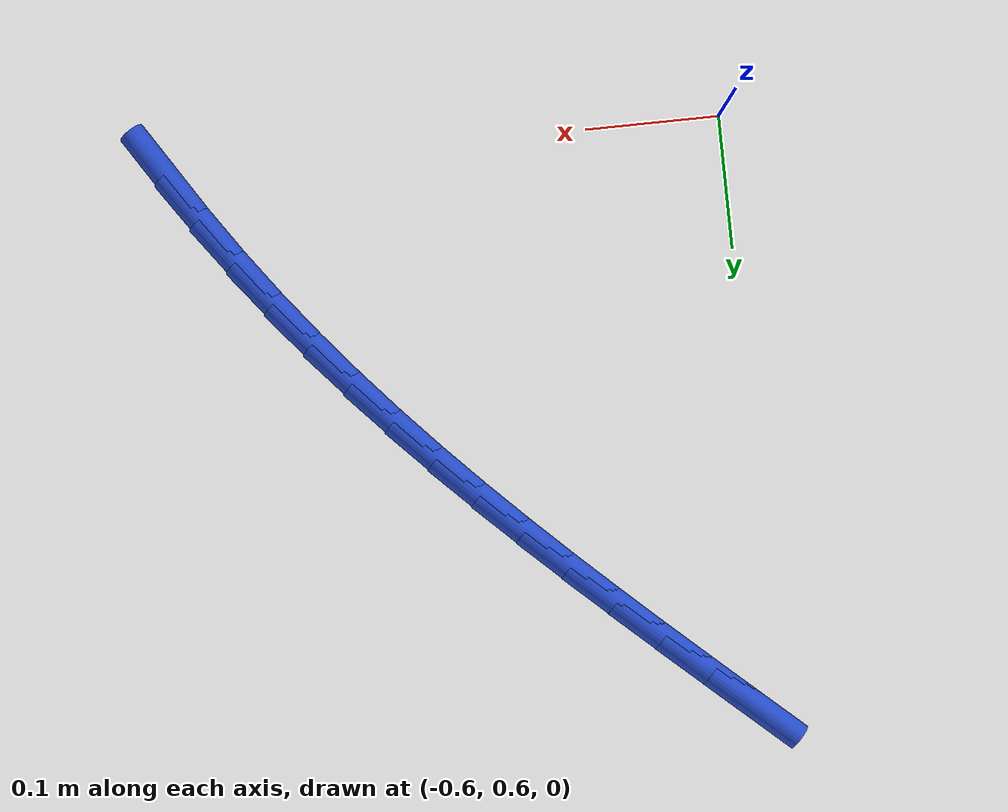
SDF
<sdf version="1.6">
 <world name="default">
  <model name="ground_plane">
   <static>1</static>
   <link name="link">
    <collision name="collision">
     <geometry><plane><normal>0 0 1</normal><size>100 100</size></plane></geometry>
     <surface><friction><ode><mu>100</mu><mu2>50</mu2></ode></friction></surface>
    </collision>
    <visual name="visual">
     <cast_shadows>0</cast_shadows>
     <geometry><plane><normal>0 0 1</normal><size>100 100</size></plane></geometry>
     <material>
      <script><uri>file://media/materials/scripts/gazebo.material</uri><name>Gazebo/WhiteGlow</name></script>
     </material>
    </visual>
   </link>
  </model>
  <model name="line">
   <link name="link_15">
    <pose>-0.18360139283458476 0.6032963163562044 0.01 0 1.57 -1.0035924352598167</pose>
    <collision name="collision">
     <geometry><cylinder><radius>0.01</radius><length>0.08</length></cylinder></geometry>
    </collision>
    <visual name="visual">
     <material>
      <script><name>Gazebo/Blue</name><uri>file://media/materials/scripts/gazebo.material</uri></script>
     </material>
     <geometry><cylinder><radius>0.01</radius><length>0.08</length></cylinder></geometry>
    </visual>
   </link>
   <link name="link_16">
    <pose>-0.206333547432564 0.6389808655287509 0.01 0 1.57 -0.9708483380710354</pose>
    <collision name="collision">
     <geometry><cylinder><radius>0.01</radius><length>0.08</length></cylinder></geometry>
    </collision>
    <visual name="visual">
     <material>
      <script><name>Gazebo/Blue</name><uri>file://media/materials/scripts/gazebo.material</uri></script>
     </material>
     <geometry><cylinder><radius>0.01</radius><length>0.08</length></cylinder></geometry>
    </visual>
   </link>
   <link name="link_17">
    <pose>-0.23010651911147798 0.6737336004096743 0.01 0 1.57 -0.9376976790625575</pose>
    <collision name="collision">
     <geometry><cylinder><radius>0.01</radius><length>0.08</length></cylinder></geometry>
    </collision>
    <visual name="visual">
     <material>
      <script><name>Gazebo/Blue</name><uri>file://media/materials/scripts/gazebo.material</uri></script>
     </material>
     <geometry><cylinder><radius>0.01</radius><length>0.08</length></cylinder></geometry>
    </visual>
   </link>
   <link name="link_18">
    <pose>-0.25487396065937173 0.7074826215023428 0.01 0 1.57 -0.9053284936645193</pose>
    <collision name="collision">
     <geometry><cylinder><radius>0.01</radius><length>0.08</length></cylinder></geometry>
    </collision>
    <visual name="visual">
     <material>
      <script><name>Gazebo/Blue</name><uri>file://media/materials/scripts/gazebo.material</uri></script>
     </material>
     <geometry><cylinder><radius>0.01</radius><length>0.08</length></cylinder></geometry>
    </visual>
   </link>
   <link name="link_19">
    <pose>-0.28058840843976807 0.7402439004701922 0.01 0 1.57 -0.8752572905753323</pose>
    <collision name="collision">
     <geometry><cylinder><radius>0.01</radius><length>0.08</length></cylinder></geometry>
    </collision>
    <visual name="visual">
     <material>
      <script><name>Gazebo/Blue</name><uri>file://media/materials/scripts/gazebo.material</uri></script>
     </material>
     <geometry><cylinder><radius>0.01</radius><length>0.08</length></cylinder></geometry>
    </visual>
   </link>
   <link name="link_20">
    <pose>-0.30720120578513094 0.7721273096579496 0.01 0 1.57 -0.8477517682803674</pose>
    <collision name="collision">
     <geometry><cylinder><radius>0.01</radius><length>0.08</length></cylinder></geometry>
    </collision>
    <visual name="visual">
     <material>
      <script><name>Gazebo/Blue</name><uri>file://media/materials/scripts/gazebo.material</uri></script>
     </material>
     <geometry><cylinder><radius>0.01</radius><length>0.08</length></cylinder></geometry>
    </visual>
   </link>
   <link name="link_21">
    <pose>-0.33466363774427516 0.8032473087798585 0.01 0 1.57 -0.8229682808153514</pose>
    <collision name="collision">
     <geometry><cylinder><radius>0.01</radius><length>0.08</length></cylinder></geometry>
    </collision>
    <visual name="visual">
     <material>
      <script><name>Gazebo/Blue</name><uri>file://media/materials/scripts/gazebo.material</uri></script>
     </material>
     <geometry><cylinder><radius>0.01</radius><length>0.08</length></cylinder></geometry>
    </visual>
   </link>
   <link name="link_22">
    <pose>-0.3629269893660159 0.8337183575501643 0.01 0 1.57 -0.8010197723613873</pose>
    <collision name="collision">
     <geometry><cylinder><radius>0.01</radius><length>0.08</length></cylinder></geometry>
    </collision>
    <visual name="visual">
     <material>
      <script><name>Gazebo/Blue</name><uri>file://media/materials/scripts/gazebo.material</uri></script>
     </material>
     <geometry><cylinder><radius>0.01</radius><length>0.08</length></cylinder></geometry>
    </visual>
   </link>
   <link name="link_23">
    <pose>-0.39194254569916803 0.8636549156831111 0.01 0 1.57 -0.7819793040330866</pose>
    <collision name="collision">
     <geometry><cylinder><radius>0.01</radius><length>0.08</length></cylinder></geometry>
    </collision>
    <visual name="visual">
     <material>
      <script><name>Gazebo/Blue</name><uri>file://media/materials/scripts/gazebo.material</uri></script>
     </material>
     <geometry><cylinder><radius>0.01</radius><length>0.08</length></cylinder></geometry>
    </visual>
   </link>
   <link name="link_24">
    <pose>-0.4216615917925466 0.893171442892944 0.01 0 1.57 -0.7658844997004426</pose>
    <collision name="collision">
     <geometry><cylinder><radius>0.01</radius><length>0.08</length></cylinder></geometry>
    </collision>
    <visual name="visual">
     <material>
      <script><name>Gazebo/Blue</name><uri>file://media/materials/scripts/gazebo.material</uri></script>
     </material>
     <geometry><cylinder><radius>0.01</radius><length>0.08</length></cylinder></geometry>
    </visual>
   </link>
   <link name="link_25">
    <pose>-0.4520354126949668 0.9223823988939074 0.01 0 1.57 -0.7527423559418361</pose>
    <collision name="collision">
     <geometry><cylinder><radius>0.01</radius><length>0.08</length></cylinder></geometry>
    </collision>
    <visual name="visual">
     <material>
      <script><name>Gazebo/Blue</name><uri>file://media/materials/scripts/gazebo.material</uri></script>
     </material>
     <geometry><cylinder><radius>0.01</radius><length>0.08</length></cylinder></geometry>
    </visual>
   </link>
   <link name="link_26">
    <pose>-0.4830152934552434 0.9514022434002459 0.01 0 1.57 -0.7425339751263574</pose>
    <collision name="collision">
     <geometry><cylinder><radius>0.01</radius><length>0.08</length></cylinder></geometry>
    </collision>
    <visual name="visual">
     <material>
      <script><name>Gazebo/Blue</name><uri>file://media/materials/scripts/gazebo.material</uri></script>
     </material>
     <geometry><cylinder><radius>0.01</radius><length>0.08</length></cylinder></geometry>
    </visual>
   </link>
   <link name="link_27">
    <pose>-0.5145525191221915 0.9803454361262041 0.01 0 1.57 -0.7352189091202924</pose>
    <collision name="collision">
     <geometry><cylinder><radius>0.01</radius><length>0.08</length></cylinder></geometry>
    </collision>
    <visual name="visual">
     <material>
      <script><name>Gazebo/Blue</name><uri>file://media/materials/scripts/gazebo.material</uri></script>
     </material>
     <geometry><cylinder><radius>0.01</radius><length>0.08</length></cylinder></geometry>
    </visual>
   </link>
   <link name="link_28">
    <pose>-0.5465983747446262 1.0093264367860266 0.01 0 1.57 -0.7307389229446388</pose>
    <collision name="collision">
     <geometry><cylinder><radius>0.01</radius><length>0.08</length></cylinder></geometry>
    </collision>
    <visual name="visual">
     <material>
      <script><name>Gazebo/Blue</name><uri>file://media/materials/scripts/gazebo.material</uri></script>
     </material>
     <geometry><cylinder><radius>0.01</radius><length>0.08</length></cylinder></geometry>
    </visual>
   </link>
   <link name="link_29">
    <pose>-0.5791041453713623 1.0384597050939584 0.01 0 1.57 -0.7290210908616706</pose>
    <collision name="collision">
     <geometry><cylinder><radius>0.01</radius><length>0.08</length></cylinder></geometry>
    </collision>
    <visual name="visual">
     <material>
      <script><name>Gazebo/Blue</name><uri>file://media/materials/scripts/gazebo.material</uri></script>
     </material>
     <geometry><cylinder><radius>0.01</radius><length>0.08</length></cylinder></geometry>
    </visual>
   </link>
  </model>
 </world>
</sdf>
